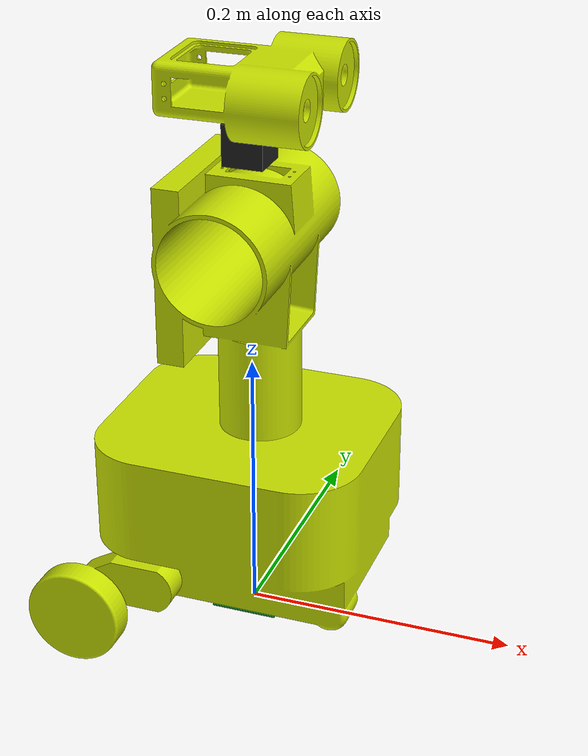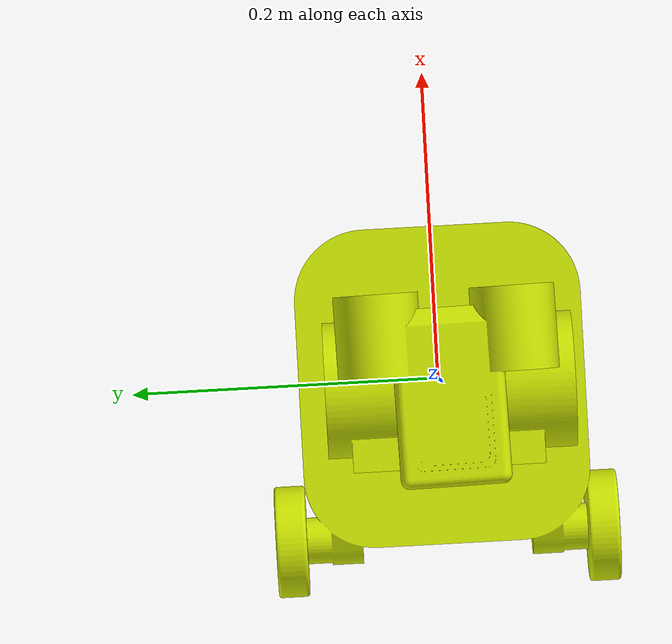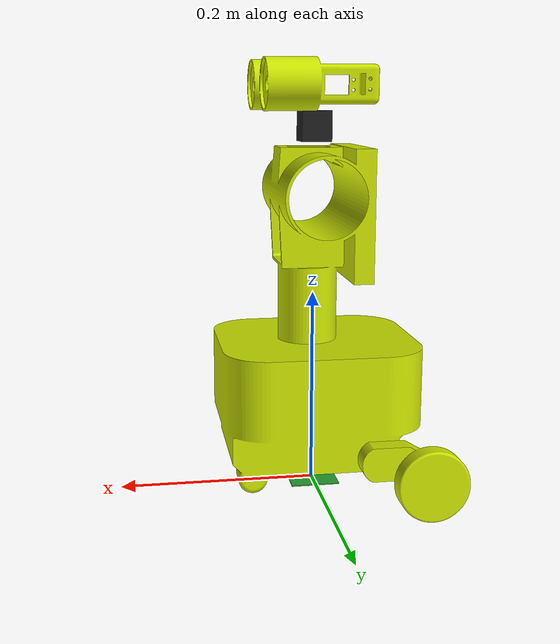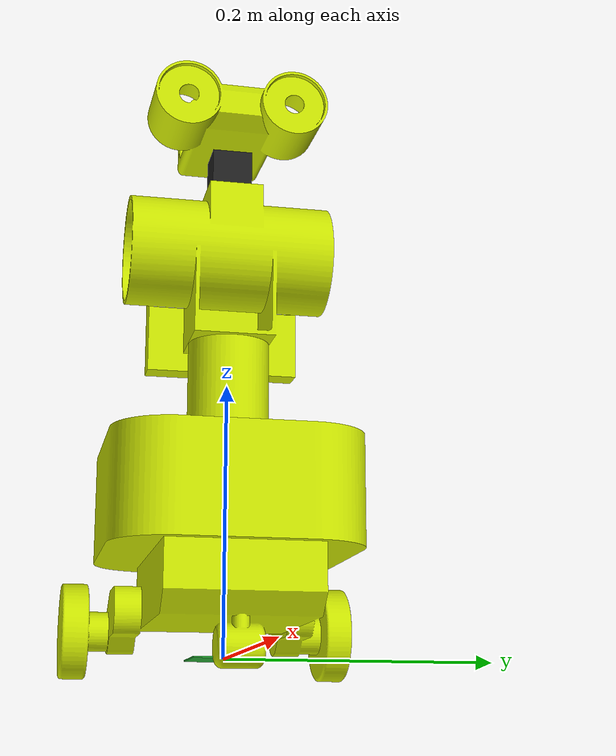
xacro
<?xml version="1.0"?>

<!-- XML namespaces -->
  <robot name="max" xmlns:xacro="http://www.ros.org/wiki/xacro">

    <xacro:property name="PI" value="3.1415" />
    <xacro:property name="M_PI" value="3.14159"/>
    <xacro:property name="M_SCALE" value="0.001"/>
    <xacro:property name="MESH_EXT" value="stl"/>
    <xacro:include filename="$(find bentley_description)/urdf/hardware.xacro" />

 <link name="base_footprint">
      <visual>
        <origin xyz="0 0 0" rpy="0 0 0" />
        <geometry>
          <box size="0.05 0.05 0.001" />
        </geometry>
        <material name="TransparentGreen" />
      </visual>
  </link>

<link name="base" >
   <visual>
      <geometry>
        <mesh filename="package://bentley_description/meshes/bentley_base.stl" scale="${M_SCALE} ${M_SCALE} ${M_SCALE}"/>
      </geometry>
         <xacro:yellow2/>
      <origin rpy="0 0 -1.57" xyz="-0.08 0 0"/>
    </visual>
    <collision>
        <origin xyz="-0.01 0 0.035" rpy="0 0 0" />
        <geometry>
          <box size="0.28 0.22 0.17" />-
          </geometry>
      </collision>
  </link>

<link name="torso" >
   <visual>
      <geometry>
        <mesh filename="package://bentley_description/meshes/bentley_torso.stl" scale="${M_SCALE} ${M_SCALE} ${M_SCALE}"/>
      </geometry>
         <xacro:yellow2/>
      <origin rpy="0 0 0" xyz="0. 0.02 0.18"/>
    </visual>
    <collision>
        <origin xyz="-0 0 0" rpy="0 0 0" />
        <geometry>
          <box size="0.28 0.22 0.17" />-
          </geometry>
      </collision>
  </link>

<link name="head" >
   <visual>
      <geometry>
        <mesh filename="package://bentley_description/meshes/head1.stl" scale="${M_SCALE} ${M_SCALE} ${M_SCALE}"/>
      </geometry>
         <xacro:yellow2/>
      <origin rpy="0 0 0" xyz="0. 0. 0."/>
    </visual>
    <collision>
        <origin xyz="-0 0 0" rpy="0 0 0" />
        <geometry>
          <box size="0.28 0.22 0.17" />-
          </geometry>
      </collision>
  </link>

<link name="pan">
      <visual>
        <origin xyz="0 0 0" rpy="0 0 0" />
        <geometry>
          <box size="0.03 0.03 0.03" />
        </geometry>
        <material name="black" />
      </visual>
  </link>

<link name="tilt">
      <visual>
        <origin xyz="0 0 0" rpy="0 0 0" />
        <geometry>
          <box size="0.03 0.03 0.03" />
        </geometry>
        <material name="white" />
      </visual>
  </link>

<!-- ##############################   joints ##################333333-->

 <joint name="base_joint" type="fixed">
    	<parent link="base_footprint" />
    	<child link="base" />
    	<origin xyz="-0 0 0.038" rpy="0 0 0" />
	</joint>

<joint name="torso_joint" type="revolute">
    	<parent link="base" />
    	<child link="torso" />
    	<origin xyz="-0 0 0.12" rpy="0 0 0" />
        <axis xyz="0 0 1" />
        <limit lower="-1.57" upper="1.57" effort="10" velocity="0" />
	</joint>

<joint name="head_pan_joint" type="revolute">
    	<parent link="torso" />
    	<child link="pan" />
    	<origin xyz="-0 0 0.21" rpy="0 0 0" />
        <axis xyz="0 0 1" />
        <limit lower="-1.57" upper="1.57" effort="10" velocity="0" />
	</joint>

<joint name="head_tilt_joint" type="revolute">
    	<parent link="pan" />
    	<child link="tilt" />
    	<origin xyz="-0 0 0" rpy="0 0 0" />
        <axis xyz="0 1 0" />
        <limit lower="-1.57" upper="1.57" effort="10" velocity="0" />
	</joint>

 <joint name="head_joint" type="fixed">
    	<parent link="tilt" />
    	<child link="head" />
    	<origin xyz="-0 0 0.04" rpy="0 0 0" />
	</joint>

</robot>

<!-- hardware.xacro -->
<robot name="bentley" xmlns:xacro="http://ros.org/wiki/xacro">

  <!-- ============================  A Few Color Macros  ============================ -->

	<xacro:macro name="black">
		<material name="black">
			<color rgba="0.1 0.1 0.1 1.0"/>
		</material>
	</xacro:macro>

	<xacro:macro name="White">
		<material name="White">
			<color rgba="1.0 1.0 1.0 1.0"/>
		</material>
	</xacro:macro>

	<xacro:macro name="grey1">
		<material name="grey1">
			<color rgba="0.75 0.75 0.75 1.0"/>
		</material>
	</xacro:macro>

	<xacro:macro name="grey2">
		<material name="grey2">
			<color rgba="0.6 0.6 0.6 1.0"/>
		</material>
	</xacro:macro>

	<xacro:macro name="grey3">
		<material name="grey3">
			<color rgba="0.8 0.8 0.8 1.0"/>
		</material>
	</xacro:macro>

	<xacro:macro name="ax12_color">
		<material name="ax12_color">
			<color rgba="0.2 0.2 0.2 1.0"/>
		</material>
	</xacro:macro>

	<xacro:macro name="bracket_color">
		<material name="bracket_color">
			<color rgba="0.9 0.9 0.9 1.0"/>
		</material>
	</xacro:macro>

        <xacro:macro name="cyan1">
		<material name="cyan1">
			<color rgba="0 0.9 0.9 1.0"/>
		</material>
	</xacro:macro>

	<xacro:macro name="cyan2">
		<material name="cyan2">
	     <color rgba="0 0.7 0.7 1.0"/>
		</material>
	</xacro:macro>

	<xacro:macro name="cyan3">
		<material name="cyan3">
	     <color rgba="0 0.5 0.5 1.0"/>
		</material>
	</xacro:macro>

        <xacro:macro name="yellow2">
		<material name="yellow2">
			<color rgba="0.8 0.9 0 1.0"/>
		</material>
	</xacro:macro>

        <xacro:macro name="gold">
		<material name="gold">
			<color rgba="0.5 0.3 0 1.0"/>
		</material>
	</xacro:macro>

	<xacro:macro name="green1">
		<material name="green1">
			<color rgba="0 1 0 1.0"/>
		</material>
	</xacro:macro>

	<xacro:macro name="green2">
		<material name="green2">
			<color rgba="0.1 0.8 0 1.0"/>
		</material>
	</xacro:macro>

        <xacro:macro name="blue1">
		<material name="blue1">
			<color rgba="0 0 0.9 1.0"/>
		</material>
	</xacro:macro>

        <xacro:macro name="ax12_color">
		<material name="ax12_color">
			<color rgba="0.1 0.1 0.1 1.0"/>
		</material>
	</xacro:macro>

 	<!-- ============================   A Few Shape Macros  ============================ -->
	<xacro:macro name="ax12" params="name xyz rpy">
		<link name="${name}">
		<visual>
			<origin xyz="${xyz}" rpy="${rpy}" />
				<geometry>
					<mesh filename="package://bentley_description/meshes/ax12_box2.${MESH_EXT}" scale="${M_SCALE} ${M_SCALE} ${M_SCALE}"/>
				</geometry>
				<xacro:ax12_color />
             </visual>

             <collision>
				<origin xyz="${xyz}" rpy="${rpy}" />
				<geometry>

					<mesh filename="package://bentley_description/meshes/ax12_box2.${MESH_EXT}" scale="${M_SCALE} ${M_SCALE} ${M_SCALE}"/>

				</geometry>
             </collision>
             <xacro:default_inertial mass="0.055" />
        </link>
        <xacro:default_gazebo name="${name}" material="Gazebo/FlatBlack" />
	</xacro:macro>

	<xacro:macro name="F2_bracket" params="name xyz rpy">
		<link name="${name}">
			<visual>
				<origin xyz="${xyz}" rpy="${rpy}" />
				<geometry>
          			<mesh filename="package://bentley_description/meshes/F2.${MESH_EXT}" scale="${M_SCALE} ${M_SCALE} ${M_SCALE}"/>
				</geometry>
				<xacro:bracket_color />
             </visual>
             <collision>
				<origin xyz="${xyz}" rpy="${rpy}" />
					<geometry>

          				<mesh filename="package://bentley_description/meshes/F2.${MESH_EXT}" scale="${M_SCALE} ${M_SCALE} ${M_SCALE}"/>

					</geometry>
             </collision>
             <xacro:default_inertial mass="0.02" />
        </link>
        <xacro:default_gazebo name="${name}" material="Gazebo/White" />
	</xacro:macro>

	<xacro:macro name="F3_bracket" params="name xyz rpy">
		<link name="${name}">
			<visual>
				<origin xyz="${xyz}" rpy="${rpy}" />
				<geometry>
          			<mesh filename="package://bentley_description/meshes/F3.${MESH_EXT}" scale="${M_SCALE} ${M_SCALE} ${M_SCALE}"/>
				</geometry><material name="grey1">
			<color rgba="0.75 0.75 0.75 1.0"/>
		</material>
				<xacro:bracket_color />
             </visual>
             <collision>
				<origin xyz="${xyz}" rpy="${rpy}" />
					<geometry>

          				<mesh filename="package://bentley_description/meshes/F3.${MESH_EXT}" scale="${M_SCALE} ${M_SCALE} ${M_SCALE}"/>

					</geometry>
             </collision>
             <xacro:default_inertial mass="0.01" />
        </link>
        <xacro:default_gazebo name="${name}" material="Gazebo/White" />
	</xacro:macro>

	<xacro:macro name="bracket_f3" params="name xyz rpy">
		<link name="${name}">
			<visual>
				<origin xyz="${xyz}" rpy="${rpy}" />
				<geometry>
					<box size="0.025 0.04 0.006" />
				</geometry>
				<xacro:bracket_color />
             </visual>
             <collision>
				<origin xyz="${xyz}" rpy="${rpy}" />
					<geometry>
						<box size="0.025 0.04 0.006" />
					</geometry>
             </collision>
             <xacro:default_inertial mass="0.02" />
        </link>
        <xacro:default_gazebo name="${name}" material="Gazebo/White" />
	</xacro:macro>

	<xacro:macro name="bracket2" params="name xyz rpy">
		<link name="${name}">
			<visual>
				<origin xyz="${xyz}" rpy="${rpy}" />
				<geometry>
					<box size="0.05 0.115 0.07" />
				</geometry>
				<xacro:bracket_color />
             </visual>
             <collision>
				<origin xyz="${xyz}" rpy="${rpy}" />
					<geometry>
					<box size="0.05 0.115 0.07" />
					</geometry>
             </collision>
             <xacro:default_inertial mass="0.01" />
        </link>
        <xacro:default_gazebo name="${name}" material="Gazebo/White" />
	</xacro:macro>

        <xacro:macro name="bracket3" params="name xyz rpy">
		<link name="${name}">
			<visual>
				<origin xyz="${xyz}" rpy="${rpy}" />
				<geometry>
					<box size="0.05 0.032 0.005" />
				</geometry>
				<xacro:bracket_color />
             </visual>
             <collision>
				<origin xyz="${xyz}" rpy="${rpy}" />
					<geometry>
					<box size="0.05 0.032 0.005" />
					</geometry>
             </collision>
             <xacro:default_inertial mass="0.01" />
        </link>
        <xacro:default_gazebo name="${name}" material="Gazebo/White" />
	</xacro:macro>

        <xacro:macro name="my_box" params="name lwh xyz rpy mass material *rviz_color">
		<link name="${name}">
			<visual>
				<origin xyz="${xyz}" rpy="${rpy}" />
				<geometry>
					<box size="${lwh}" />
				</geometry>
			    <xacro:insert_block name="rviz_color" />
             </visual>
             <collision>
				<origin xyz="${xyz}" rpy="${rpy}" />
					<geometry>
						<box size="${lwh}" />
					</geometry>
              <xacro:default_inertial mass="0.01" />
             </collision>

        </link>

        <xacro:default_gazebo name="${name}" material="${material}" />
	</xacro:macro>

	<xacro:macro name="my_cylinder" params="name r l xyz rpy mass material *rviz_color">
		<link name="${name}">
			<visual>
				<origin xyz="${xyz}" rpy="${rpy}" />
				<geometry>
					<cylinder length="${l}" radius="${r}" />
				</geometry>
            	<xacro:insert_block name="rviz_color" />
            </visual>
            <collision>
				<origin xyz="${xyz}" rpy="${rpy}" />
					<geometry>
						<cylinder length="${l}" radius="${r}" />
					</geometry>
            </collision>
            <xacro:default_inertial mass="${mass}" />
        </link>
        <xacro:default_gazebo name="${name}" material="${material}" />
	</xacro:macro>

    <xacro:macro name="default_inertial" params="mass">
		<inertial>
			<mass value="${mass}" />
			<inertia ixx="0.0001" ixy="0.0" ixz="0.0"
                     iyy="0.0001" iyz="0.0"
                     izz="0.0001" />
			</inertial>
    </xacro:macro>

    <xacro:macro name="my_sphere" params="name r xyz rpy mass material *rviz_color">
		<link name="${name}">
			<visual>
				<origin xyz="${xyz}" rpy="${rpy}" />
				<geometry>
					<sphere radius="${r}"/>
				</geometry>
            	<xacro:insert_block name="rviz_color" />
            </visual>
            <collision>
				<origin xyz="${xyz}" rpy="${rpy}" />
					<geometry>
						<sphere radius="${r}"/>
					</geometry>
            </collision>
            <xacro:default_inertial mass="${mass}" />
        </link>
        <xacro:default_gazebo name="${name}" material="${material}" />
	</xacro:macro>

    <xacro:macro name="default_inertial" params="mass">
		<inertial>
			<mass value="${mass}" />
			<inertia ixx="0.0001" ixy="0.0" ixz="0.0"
                     iyy="0.0001" iyz="0.0"
                     izz="0.0001" />
			</inertial>
    </xacro:macro>

    <xacro:macro name="default_gazebo" params="name material">
 		<gazebo reference="${name}">
			<material>${material}</material>
			<selfCollide>false</selfCollide>
			<turnGravityOff>false</turnGravityOff>
		</gazebo>
    </xacro:macro>

</robot>
